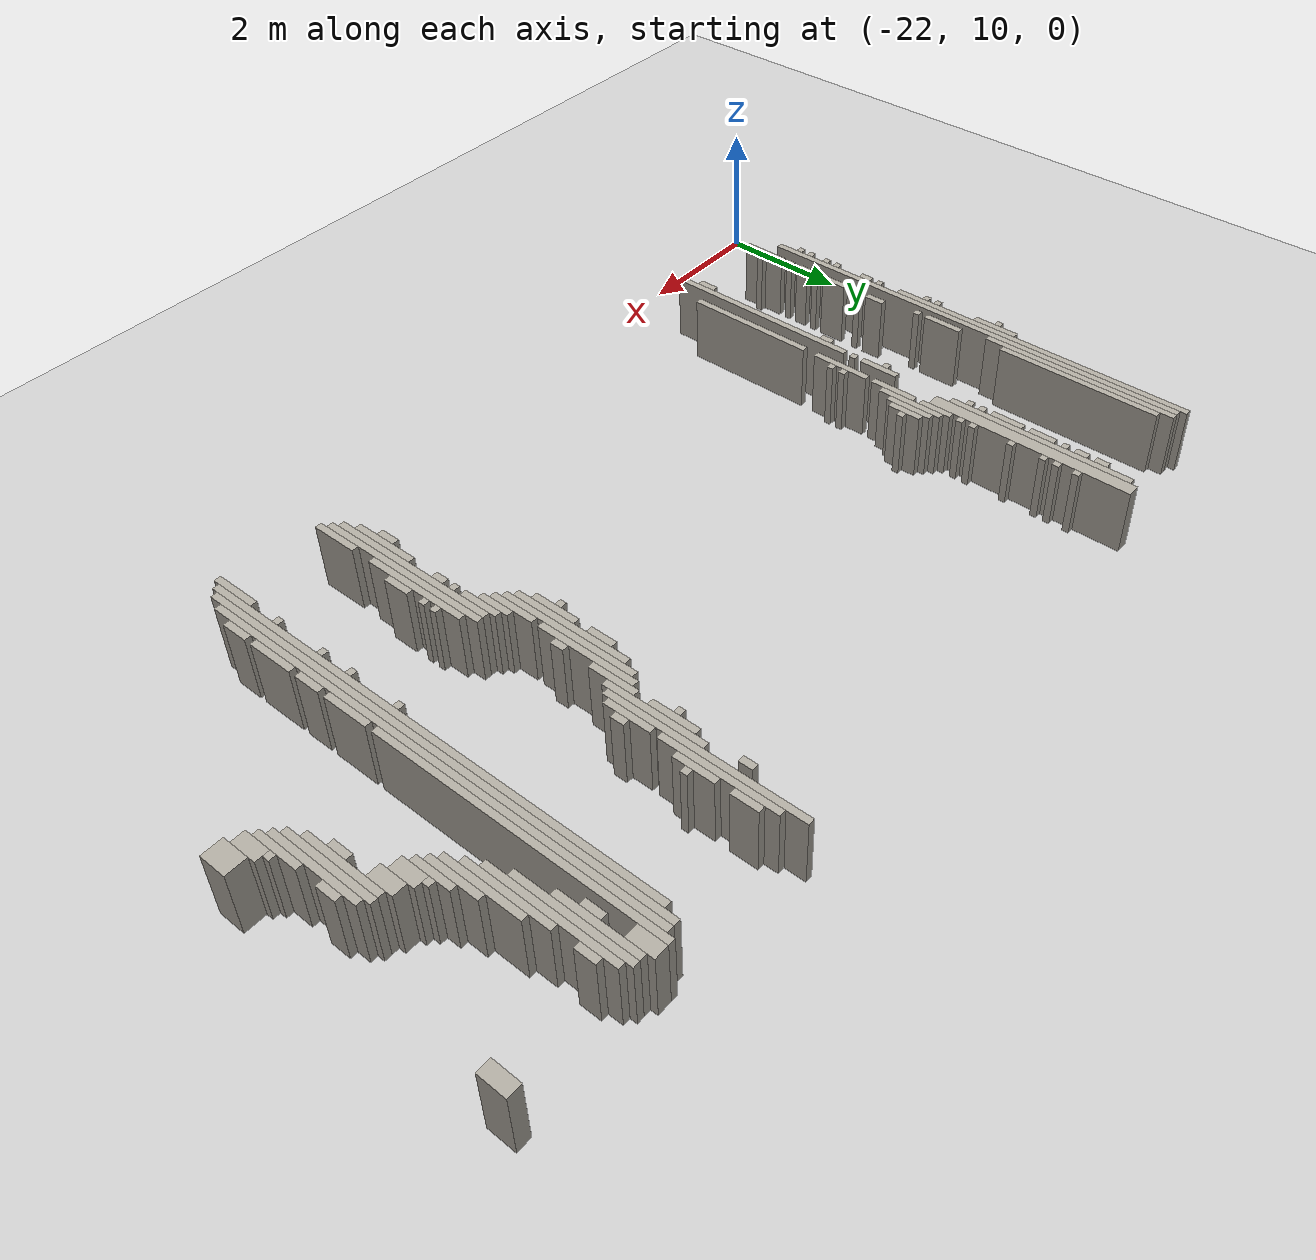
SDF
<sdf version="1.6">
 <world name="willow_office">
  <include><uri>model://sun</uri></include>
  <include><uri>model://ground_plane</uri></include>
  <model name="willow_office_walls">
   <static>true</static>
   <link name="w0810">
    <pose>-10.835 11.212 0.500 0 0 0</pose>
    <collision name="c"><geometry><box><size>0.100 0.700 1.000</size></box></geometry></collision>
    <visual name="v">
     <geometry><box><size>0.100 0.700 1.000</size></box></geometry>
     <material><ambient>0.68 0.66 0.62 1</ambient><diffuse>0.68 0.66 0.62 1</diffuse></material>
    </visual>
   </link>
   <link name="w0812">
    <pose>-19.435 12.512 0.500 0 0 0</pose>
    <collision name="c"><geometry><box><size>0.100 3.100 1.000</size></box></geometry></collision>
    <visual name="v">
     <geometry><box><size>0.100 3.100 1.000</size></box></geometry>
     <material><ambient>0.68 0.66 0.62 1</ambient><diffuse>0.68 0.66 0.62 1</diffuse></material>
    </visual>
   </link>
   <link name="w0815">
    <pose>-10.735 14.562 0.500 0 0 0</pose>
    <collision name="c"><geometry><box><size>0.100 7.200 1.000</size></box></geometry></collision>
    <visual name="v">
     <geometry><box><size>0.100 7.200 1.000</size></box></geometry>
     <material><ambient>0.68 0.66 0.62 1</ambient><diffuse>0.68 0.66 0.62 1</diffuse></material>
    </visual>
   </link>
   <link name="w0817">
    <pose>-12.235 11.412 0.500 0 0 0</pose>
    <collision name="c"><geometry><box><size>0.100 0.700 1.000</size></box></geometry></collision>
    <visual name="v">
     <geometry><box><size>0.100 0.700 1.000</size></box></geometry>
     <material><ambient>0.68 0.66 0.62 1</ambient><diffuse>0.68 0.66 0.62 1</diffuse></material>
    </visual>
   </link>
   <link name="w0818">
    <pose>-10.635 14.712 0.500 0 0 0</pose>
    <collision name="c"><geometry><box><size>0.100 7.300 1.000</size></box></geometry></collision>
    <visual name="v">
     <geometry><box><size>0.100 7.300 1.000</size></box></geometry>
     <material><ambient>0.68 0.66 0.62 1</ambient><diffuse>0.68 0.66 0.62 1</diffuse></material>
    </visual>
   </link>
   <link name="w0819">
    <pose>-20.835 11.512 0.500 0 0 0</pose>
    <collision name="c"><geometry><box><size>0.100 0.700 1.000</size></box></geometry></collision>
    <visual name="v">
     <geometry><box><size>0.100 0.700 1.000</size></box></geometry>
     <material><ambient>0.68 0.66 0.62 1</ambient><diffuse>0.68 0.66 0.62 1</diffuse></material>
    </visual>
   </link>
   <link name="w0820">
    <pose>-12.335 12.512 0.500 0 0 0</pose>
    <collision name="c"><geometry><box><size>0.100 2.700 1.000</size></box></geometry></collision>
    <visual name="v">
     <geometry><box><size>0.100 2.700 1.000</size></box></geometry>
     <material><ambient>0.68 0.66 0.62 1</ambient><diffuse>0.68 0.66 0.62 1</diffuse></material>
    </visual>
   </link>
   <link name="w0823">
    <pose>-19.535 11.412 0.500 0 0 0</pose>
    <collision name="c"><geometry><box><size>0.100 0.300 1.000</size></box></geometry></collision>
    <visual name="v">
     <geometry><box><size>0.100 0.300 1.000</size></box></geometry>
     <material><ambient>0.68 0.66 0.62 1</ambient><diffuse>0.68 0.66 0.62 1</diffuse></material>
    </visual>
   </link>
   <link name="w0824">
    <pose>-12.435 12.562 0.500 0 0 0</pose>
    <collision name="c"><geometry><box><size>0.100 2.600 1.000</size></box></geometry></collision>
    <visual name="v">
     <geometry><box><size>0.100 2.600 1.000</size></box></geometry>
     <material><ambient>0.68 0.66 0.62 1</ambient><diffuse>0.68 0.66 0.62 1</diffuse></material>
    </visual>
   </link>
   <link name="w0825">
    <pose>-10.535 14.812 0.500 0 0 0</pose>
    <collision name="c"><geometry><box><size>0.100 7.100 1.000</size></box></geometry></collision>
    <visual name="v">
     <geometry><box><size>0.100 7.100 1.000</size></box></geometry>
     <material><ambient>0.68 0.66 0.62 1</ambient><diffuse>0.68 0.66 0.62 1</diffuse></material>
    </visual>
   </link>
   <link name="w0828">
    <pose>-20.735 11.512 0.500 0 0 0</pose>
    <collision name="c"><geometry><box><size>0.100 0.100 1.000</size></box></geometry></collision>
    <visual name="v">
     <geometry><box><size>0.100 0.100 1.000</size></box></geometry>
     <material><ambient>0.68 0.66 0.62 1</ambient><diffuse>0.68 0.66 0.62 1</diffuse></material>
    </visual>
   </link>
   <link name="w0829">
    <pose>-12.535 11.962 0.500 0 0 0</pose>
    <collision name="c"><geometry><box><size>0.100 1.000 1.000</size></box></geometry></collision>
    <visual name="v">
     <geometry><box><size>0.100 1.000 1.000</size></box></geometry>
     <material><ambient>0.68 0.66 0.62 1</ambient><diffuse>0.68 0.66 0.62 1</diffuse></material>
    </visual>
   </link>
   <link name="w0831">
    <pose>-21.135 15.012 0.500 0 0 0</pose>
    <collision name="c"><geometry><box><size>0.100 6.900 1.000</size></box></geometry></collision>
    <visual name="v">
     <geometry><box><size>0.100 6.900 1.000</size></box></geometry>
     <material><ambient>0.68 0.66 0.62 1</ambient><diffuse>0.68 0.66 0.62 1</diffuse></material>
    </visual>
   </link>
   <link name="w0832">
    <pose>-19.135 12.562 0.500 0 0 0</pose>
    <collision name="c"><geometry><box><size>0.100 2.000 1.000</size></box></geometry></collision>
    <visual name="v">
     <geometry><box><size>0.100 2.000 1.000</size></box></geometry>
     <material><ambient>0.68 0.66 0.62 1</ambient><diffuse>0.68 0.66 0.62 1</diffuse></material>
    </visual>
   </link>
   <link name="w0833">
    <pose>-10.435 11.762 0.500 0 0 0</pose>
    <collision name="c"><geometry><box><size>0.100 0.400 1.000</size></box></geometry></collision>
    <visual name="v">
     <geometry><box><size>0.100 0.400 1.000</size></box></geometry>
     <material><ambient>0.68 0.66 0.62 1</ambient><diffuse>0.68 0.66 0.62 1</diffuse></material>
    </visual>
   </link>
   <link name="w0838">
    <pose>-12.635 11.912 0.500 0 0 0</pose>
    <collision name="c"><geometry><box><size>0.100 0.300 1.000</size></box></geometry></collision>
    <visual name="v">
     <geometry><box><size>0.100 0.300 1.000</size></box></geometry>
     <material><ambient>0.68 0.66 0.62 1</ambient><diffuse>0.68 0.66 0.62 1</diffuse></material>
    </visual>
   </link>
   <link name="w0839">
    <pose>-21.235 11.912 0.500 0 0 0</pose>
    <collision name="c"><geometry><box><size>0.100 0.100 1.000</size></box></geometry></collision>
    <visual name="v">
     <geometry><box><size>0.100 0.100 1.000</size></box></geometry>
     <material><ambient>0.68 0.66 0.62 1</ambient><diffuse>0.68 0.66 0.62 1</diffuse></material>
    </visual>
   </link>
   <link name="w0842">
    <pose>-20.835 12.012 0.500 0 0 0</pose>
    <collision name="c"><geometry><box><size>0.100 0.100 1.000</size></box></geometry></collision>
    <visual name="v">
     <geometry><box><size>0.100 0.100 1.000</size></box></geometry>
     <material><ambient>0.68 0.66 0.62 1</ambient><diffuse>0.68 0.66 0.62 1</diffuse></material>
    </visual>
   </link>
   <link name="w0843">
    <pose>-10.835 12.012 0.500 0 0 0</pose>
    <collision name="c"><geometry><box><size>0.100 0.100 1.000</size></box></geometry></collision>
    <visual name="v">
     <geometry><box><size>0.100 0.100 1.000</size></box></geometry>
     <material><ambient>0.68 0.66 0.62 1</ambient><diffuse>0.68 0.66 0.62 1</diffuse></material>
    </visual>
   </link>
   <link name="w0845">
    <pose>-21.235 12.112 0.500 0 0 0</pose>
    <collision name="c"><geometry><box><size>0.100 0.100 1.000</size></box></geometry></collision>
    <visual name="v">
     <geometry><box><size>0.100 0.100 1.000</size></box></geometry>
     <material><ambient>0.68 0.66 0.62 1</ambient><diffuse>0.68 0.66 0.62 1</diffuse></material>
    </visual>
   </link>
   <link name="w0846">
    <pose>-12.235 12.862 0.500 0 0 0</pose>
    <collision name="c"><geometry><box><size>0.100 1.600 1.000</size></box></geometry></collision>
    <visual name="v">
     <geometry><box><size>0.100 1.600 1.000</size></box></geometry>
     <material><ambient>0.68 0.66 0.62 1</ambient><diffuse>0.68 0.66 0.62 1</diffuse></material>
    </visual>
   </link>
   <link name="w0847">
    <pose>-10.435 12.412 0.500 0 0 0</pose>
    <collision name="c"><geometry><box><size>0.100 0.700 1.000</size></box></geometry></collision>
    <visual name="v">
     <geometry><box><size>0.100 0.700 1.000</size></box></geometry>
     <material><ambient>0.68 0.66 0.62 1</ambient><diffuse>0.68 0.66 0.62 1</diffuse></material>
    </visual>
   </link>
   <link name="w0849">
    <pose>-20.835 12.262 0.500 0 0 0</pose>
    <collision name="c"><geometry><box><size>0.100 0.200 1.000</size></box></geometry></collision>
    <visual name="v">
     <geometry><box><size>0.100 0.200 1.000</size></box></geometry>
     <material><ambient>0.68 0.66 0.62 1</ambient><diffuse>0.68 0.66 0.62 1</diffuse></material>
    </visual>
   </link>
   <link name="w0851">
    <pose>-21.235 12.412 0.500 0 0 0</pose>
    <collision name="c"><geometry><box><size>0.100 0.100 1.000</size></box></geometry></collision>
    <visual name="v">
     <geometry><box><size>0.100 0.100 1.000</size></box></geometry>
     <material><ambient>0.68 0.66 0.62 1</ambient><diffuse>0.68 0.66 0.62 1</diffuse></material>
    </visual>
   </link>
   <link name="w0853">
    <pose>-20.835 12.512 0.500 0 0 0</pose>
    <collision name="c"><geometry><box><size>0.100 0.100 1.000</size></box></geometry></collision>
    <visual name="v">
     <geometry><box><size>0.100 0.100 1.000</size></box></geometry>
     <material><ambient>0.68 0.66 0.62 1</ambient><diffuse>0.68 0.66 0.62 1</diffuse></material>
    </visual>
   </link>
   <link name="w0854">
    <pose>-12.135 12.662 0.500 0 0 0</pose>
    <collision name="c"><geometry><box><size>0.100 0.400 1.000</size></box></geometry></collision>
    <visual name="v">
     <geometry><box><size>0.100 0.400 1.000</size></box></geometry>
     <material><ambient>0.68 0.66 0.62 1</ambient><diffuse>0.68 0.66 0.62 1</diffuse></material>
    </visual>
   </link>
   <link name="w0855">
    <pose>-21.235 12.612 0.500 0 0 0</pose>
    <collision name="c"><geometry><box><size>0.100 0.100 1.000</size></box></geometry></collision>
    <visual name="v">
     <geometry><box><size>0.100 0.100 1.000</size></box></geometry>
     <material><ambient>0.68 0.66 0.62 1</ambient><diffuse>0.68 0.66 0.62 1</diffuse></material>
    </visual>
   </link>
   <link name="w0857">
    <pose>-20.835 12.862 0.500 0 0 0</pose>
    <collision name="c"><geometry><box><size>0.100 0.400 1.000</size></box></geometry></collision>
    <visual name="v">
     <geometry><box><size>0.100 0.400 1.000</size></box></geometry>
     <material><ambient>0.68 0.66 0.62 1</ambient><diffuse>0.68 0.66 0.62 1</diffuse></material>
    </visual>
   </link>
   <link name="w0858">
    <pose>-10.835 12.812 0.500 0 0 0</pose>
    <collision name="c"><geometry><box><size>0.100 0.100 1.000</size></box></geometry></collision>
    <visual name="v">
     <geometry><box><size>0.100 0.100 1.000</size></box></geometry>
     <material><ambient>0.68 0.66 0.62 1</ambient><diffuse>0.68 0.66 0.62 1</diffuse></material>
    </visual>
   </link>
   <link name="w0859">
    <pose>-12.535 12.962 0.500 0 0 0</pose>
    <collision name="c"><geometry><box><size>0.100 0.200 1.000</size></box></geometry></collision>
    <visual name="v">
     <geometry><box><size>0.100 0.200 1.000</size></box></geometry>
     <material><ambient>0.68 0.66 0.62 1</ambient><diffuse>0.68 0.66 0.62 1</diffuse></material>
    </visual>
   </link>
   <link name="w0860">
    <pose>-10.435 13.062 0.500 0 0 0</pose>
    <collision name="c"><geometry><box><size>0.100 0.400 1.000</size></box></geometry></collision>
    <visual name="v">
     <geometry><box><size>0.100 0.400 1.000</size></box></geometry>
     <material><ambient>0.68 0.66 0.62 1</ambient><diffuse>0.68 0.66 0.62 1</diffuse></material>
    </visual>
   </link>
   <link name="w0862">
    <pose>-21.235 13.162 0.500 0 0 0</pose>
    <collision name="c"><geometry><box><size>0.100 0.200 1.000</size></box></geometry></collision>
    <visual name="v">
     <geometry><box><size>0.100 0.200 1.000</size></box></geometry>
     <material><ambient>0.68 0.66 0.62 1</ambient><diffuse>0.68 0.66 0.62 1</diffuse></material>
    </visual>
   </link>
   <link name="w0863">
    <pose>-12.135 13.112 0.500 0 0 0</pose>
    <collision name="c"><geometry><box><size>0.100 0.100 1.000</size></box></geometry></collision>
    <visual name="v">
     <geometry><box><size>0.100 0.100 1.000</size></box></geometry>
     <material><ambient>0.68 0.66 0.62 1</ambient><diffuse>0.68 0.66 0.62 1</diffuse></material>
    </visual>
   </link>
   <link name="w0864">
    <pose>-12.535 13.212 0.500 0 0 0</pose>
    <collision name="c"><geometry><box><size>0.100 0.100 1.000</size></box></geometry></collision>
    <visual name="v">
     <geometry><box><size>0.100 0.100 1.000</size></box></geometry>
     <material><ambient>0.68 0.66 0.62 1</ambient><diffuse>0.68 0.66 0.62 1</diffuse></material>
    </visual>
   </link>
   <link name="w0866">
    <pose>-20.835 13.312 0.500 0 0 0</pose>
    <collision name="c"><geometry><box><size>0.100 0.100 1.000</size></box></geometry></collision>
    <visual name="v">
     <geometry><box><size>0.100 0.100 1.000</size></box></geometry>
     <material><ambient>0.68 0.66 0.62 1</ambient><diffuse>0.68 0.66 0.62 1</diffuse></material>
    </visual>
   </link>
   <link name="w0867">
    <pose>-12.135 13.312 0.500 0 0 0</pose>
    <collision name="c"><geometry><box><size>0.100 0.100 1.000</size></box></geometry></collision>
    <visual name="v">
     <geometry><box><size>0.100 0.100 1.000</size></box></geometry>
     <material><ambient>0.68 0.66 0.62 1</ambient><diffuse>0.68 0.66 0.62 1</diffuse></material>
    </visual>
   </link>
   <link name="w0868">
    <pose>-10.835 13.312 0.500 0 0 0</pose>
    <collision name="c"><geometry><box><size>0.100 0.100 1.000</size></box></geometry></collision>
    <visual name="v">
     <geometry><box><size>0.100 0.100 1.000</size></box></geometry>
     <material><ambient>0.68 0.66 0.62 1</ambient><diffuse>0.68 0.66 0.62 1</diffuse></material>
    </visual>
   </link>
   <link name="w0870">
    <pose>-21.235 13.412 0.500 0 0 0</pose>
    <collision name="c"><geometry><box><size>0.100 0.100 1.000</size></box></geometry></collision>
    <visual name="v">
     <geometry><box><size>0.100 0.100 1.000</size></box></geometry>
     <material><ambient>0.68 0.66 0.62 1</ambient><diffuse>0.68 0.66 0.62 1</diffuse></material>
    </visual>
   </link>
   <link name="w0871">
    <pose>-12.535 13.662 0.500 0 0 0</pose>
    <collision name="c"><geometry><box><size>0.100 0.600 1.000</size></box></geometry></collision>
    <visual name="v">
     <geometry><box><size>0.100 0.600 1.000</size></box></geometry>
     <material><ambient>0.68 0.66 0.62 1</ambient><diffuse>0.68 0.66 0.62 1</diffuse></material>
    </visual>
   </link>
   <link name="w0872">
    <pose>-10.435 13.712 0.500 0 0 0</pose>
    <collision name="c"><geometry><box><size>0.100 0.700 1.000</size></box></geometry></collision>
    <visual name="v">
     <geometry><box><size>0.100 0.700 1.000</size></box></geometry>
     <material><ambient>0.68 0.66 0.62 1</ambient><diffuse>0.68 0.66 0.62 1</diffuse></material>
    </visual>
   </link>
   <link name="w0873">
    <pose>-20.835 13.612 0.500 0 0 0</pose>
    <collision name="c"><geometry><box><size>0.100 0.300 1.000</size></box></geometry></collision>
    <visual name="v">
     <geometry><box><size>0.100 0.300 1.000</size></box></geometry>
     <material><ambient>0.68 0.66 0.62 1</ambient><diffuse>0.68 0.66 0.62 1</diffuse></material>
    </visual>
   </link>
   <link name="w0875">
    <pose>-19.535 13.662 0.500 0 0 0</pose>
    <collision name="c"><geometry><box><size>0.100 0.200 1.000</size></box></geometry></collision>
    <visual name="v">
     <geometry><box><size>0.100 0.200 1.000</size></box></geometry>
     <material><ambient>0.68 0.66 0.62 1</ambient><diffuse>0.68 0.66 0.62 1</diffuse></material>
    </visual>
   </link>
   <link name="w0876">
    <pose>-12.635 13.812 0.500 0 0 0</pose>
    <collision name="c"><geometry><box><size>0.100 0.500 1.000</size></box></geometry></collision>
    <visual name="v">
     <geometry><box><size>0.100 0.500 1.000</size></box></geometry>
     <material><ambient>0.68 0.66 0.62 1</ambient><diffuse>0.68 0.66 0.62 1</diffuse></material>
    </visual>
   </link>
   <link name="w0877">
    <pose>-12.735 14.012 0.500 0 0 0</pose>
    <collision name="c"><geometry><box><size>0.100 0.700 1.000</size></box></geometry></collision>
    <visual name="v">
     <geometry><box><size>0.100 0.700 1.000</size></box></geometry>
     <material><ambient>0.68 0.66 0.62 1</ambient><diffuse>0.68 0.66 0.62 1</diffuse></material>
    </visual>
   </link>
   <link name="w0879">
    <pose>-21.235 16.162 0.500 0 0 0</pose>
    <collision name="c"><geometry><box><size>0.100 4.800 1.000</size></box></geometry></collision>
    <visual name="v">
     <geometry><box><size>0.100 4.800 1.000</size></box></geometry>
     <material><ambient>0.68 0.66 0.62 1</ambient><diffuse>0.68 0.66 0.62 1</diffuse></material>
    </visual>
   </link>
   <link name="w0880">
    <pose>-19.135 14.212 0.500 0 0 0</pose>
    <collision name="c"><geometry><box><size>0.100 0.900 1.000</size></box></geometry></collision>
    <visual name="v">
     <geometry><box><size>0.100 0.900 1.000</size></box></geometry>
     <material><ambient>0.68 0.66 0.62 1</ambient><diffuse>0.68 0.66 0.62 1</diffuse></material>
    </visual>
   </link>
   <link name="w0881">
    <pose>-12.835 14.812 0.500 0 0 0</pose>
    <collision name="c"><geometry><box><size>0.100 2.100 1.000</size></box></geometry></collision>
    <visual name="v">
     <geometry><box><size>0.100 2.100 1.000</size></box></geometry>
     <material><ambient>0.68 0.66 0.62 1</ambient><diffuse>0.68 0.66 0.62 1</diffuse></material>
    </visual>
   </link>
   <link name="w0882">
    <pose>-12.935 14.762 0.500 0 0 0</pose>
    <collision name="c"><geometry><box><size>0.100 1.800 1.000</size></box></geometry></collision>
    <visual name="v">
     <geometry><box><size>0.100 1.800 1.000</size></box></geometry>
     <material><ambient>0.68 0.66 0.62 1</ambient><diffuse>0.68 0.66 0.62 1</diffuse></material>
    </visual>
   </link>
   <link name="w0885">
    <pose>-19.035 14.112 0.500 0 0 0</pose>
    <collision name="c"><geometry><box><size>0.100 0.100 1.000</size></box></geometry></collision>
    <visual name="v">
     <geometry><box><size>0.100 0.100 1.000</size></box></geometry>
     <material><ambient>0.68 0.66 0.62 1</ambient><diffuse>0.68 0.66 0.62 1</diffuse></material>
    </visual>
   </link>
   <link name="w0886">
    <pose>-13.035 14.412 0.500 0 0 0</pose>
    <collision name="c"><geometry><box><size>0.100 0.700 1.000</size></box></geometry></collision>
    <visual name="v">
     <geometry><box><size>0.100 0.700 1.000</size></box></geometry>
     <material><ambient>0.68 0.66 0.62 1</ambient><diffuse>0.68 0.66 0.62 1</diffuse></material>
    </visual>
   </link>
   <link name="w0887">
    <pose>-10.835 14.112 0.500 0 0 0</pose>
    <collision name="c"><geometry><box><size>0.100 0.100 1.000</size></box></geometry></collision>
    <visual name="v">
     <geometry><box><size>0.100 0.100 1.000</size></box></geometry>
     <material><ambient>0.68 0.66 0.62 1</ambient><diffuse>0.68 0.66 0.62 1</diffuse></material>
    </visual>
   </link>
   <link name="w0888">
    <pose>-8.335 14.262 0.500 0 0 0</pose>
    <collision name="c"><geometry><box><size>0.300 0.400 1.000</size></box></geometry></collision>
    <visual name="v">
     <geometry><box><size>0.300 0.400 1.000</size></box></geometry>
     <material><ambient>0.68 0.66 0.62 1</ambient><diffuse>0.68 0.66 0.62 1</diffuse></material>
    </visual>
   </link>
   <link name="w0891">
    <pose>-21.335 14.212 0.500 0 0 0</pose>
    <collision name="c"><geometry><box><size>0.100 0.100 1.000</size></box></geometry></collision>
    <visual name="v">
     <geometry><box><size>0.100 0.100 1.000</size></box></geometry>
     <material><ambient>0.68 0.66 0.62 1</ambient><diffuse>0.68 0.66 0.62 1</diffuse></material>
    </visual>
   </link>
   <link name="w0892">
    <pose>-19.435 14.212 0.500 0 0 0</pose>
    <collision name="c"><geometry><box><size>0.100 0.100 1.000</size></box></geometry></collision>
    <visual name="v">
     <geometry><box><size>0.100 0.100 1.000</size></box></geometry>
     <material><ambient>0.68 0.66 0.62 1</ambient><diffuse>0.68 0.66 0.62 1</diffuse></material>
    </visual>
   </link>
   <link name="w0893">
    <pose>-10.435 16.312 0.500 0 0 0</pose>
    <collision name="c"><geometry><box><size>0.100 4.300 1.000</size></box></geometry></collision>
    <visual name="v">
     <geometry><box><size>0.100 4.300 1.000</size></box></geometry>
     <material><ambient>0.68 0.66 0.62 1</ambient><diffuse>0.68 0.66 0.62 1</diffuse></material>
    </visual>
   </link>
   <link name="w0894">
    <pose>-8.585 14.362 0.500 0 0 0</pose>
    <collision name="c"><geometry><box><size>0.200 0.400 1.000</size></box></geometry></collision>
    <visual name="v">
     <geometry><box><size>0.200 0.400 1.000</size></box></geometry>
     <material><ambient>0.68 0.66 0.62 1</ambient><diffuse>0.68 0.66 0.62 1</diffuse></material>
    </visual>
   </link>
   <link name="w0899">
    <pose>-20.935 14.312 0.500 0 0 0</pose>
    <collision name="c"><geometry><box><size>0.100 0.100 1.000</size></box></geometry></collision>
    <visual name="v">
     <geometry><box><size>0.100 0.100 1.000</size></box></geometry>
     <material><ambient>0.68 0.66 0.62 1</ambient><diffuse>0.68 0.66 0.62 1</diffuse></material>
    </visual>
   </link>
   <link name="w0900">
    <pose>-19.035 14.312 0.500 0 0 0</pose>
    <collision name="c"><geometry><box><size>0.100 0.100 1.000</size></box></geometry></collision>
    <visual name="v">
     <geometry><box><size>0.100 0.100 1.000</size></box></geometry>
     <material><ambient>0.68 0.66 0.62 1</ambient><diffuse>0.68 0.66 0.62 1</diffuse></material>
    </visual>
   </link>
   <link name="w0901">
    <pose>-8.735 14.612 0.500 0 0 0</pose>
    <collision name="c"><geometry><box><size>0.100 0.700 1.000</size></box></geometry></collision>
    <visual name="v">
     <geometry><box><size>0.100 0.700 1.000</size></box></geometry>
     <material><ambient>0.68 0.66 0.62 1</ambient><diffuse>0.68 0.66 0.62 1</diffuse></material>
    </visual>
   </link>
   <link name="w0905">
    <pose>-21.335 14.412 0.500 0 0 0</pose>
    <collision name="c"><geometry><box><size>0.100 0.100 1.000</size></box></geometry></collision>
    <visual name="v">
     <geometry><box><size>0.100 0.100 1.000</size></box></geometry>
     <material><ambient>0.68 0.66 0.62 1</ambient><diffuse>0.68 0.66 0.62 1</diffuse></material>
    </visual>
   </link>
   <link name="w0906">
    <pose>-19.435 14.662 0.500 0 0 0</pose>
    <collision name="c"><geometry><box><size>0.100 0.600 1.000</size></box></geometry></collision>
    <visual name="v">
     <geometry><box><size>0.100 0.600 1.000</size></box></geometry>
     <material><ambient>0.68 0.66 0.62 1</ambient><diffuse>0.68 0.66 0.62 1</diffuse></material>
    </visual>
   </link>
   <link name="w0907">
    <pose>-13.135 14.412 0.500 0 0 0</pose>
    <collision name="c"><geometry><box><size>0.100 0.100 1.000</size></box></geometry></collision>
    <visual name="v">
     <geometry><box><size>0.100 0.100 1.000</size></box></geometry>
     <material><ambient>0.68 0.66 0.62 1</ambient><diffuse>0.68 0.66 0.62 1</diffuse></material>
    </visual>
   </link>
   <link name="w0908">
    <pose>-8.835 15.062 0.500 0 0 0</pose>
    <collision name="c"><geometry><box><size>0.100 1.400 1.000</size></box></geometry></collision>
    <visual name="v">
     <geometry><box><size>0.100 1.400 1.000</size></box></geometry>
     <material><ambient>0.68 0.66 0.62 1</ambient><diffuse>0.68 0.66 0.62 1</diffuse></material>
    </visual>
   </link>
   <link name="w0911">
    <pose>-20.935 14.762 0.500 0 0 0</pose>
    <collision name="c"><geometry><box><size>0.100 0.600 1.000</size></box></geometry></collision>
    <visual name="v">
     <geometry><box><size>0.100 0.600 1.000</size></box></geometry>
     <material><ambient>0.68 0.66 0.62 1</ambient><diffuse>0.68 0.66 0.62 1</diffuse></material>
    </visual>
   </link>
   <link name="w0912">
    <pose>-12.735 15.212 0.500 0 0 0</pose>
    <collision name="c"><geometry><box><size>0.100 1.500 1.000</size></box></geometry></collision>
    <visual name="v">
     <geometry><box><size>0.100 1.500 1.000</size></box></geometry>
     <material><ambient>0.68 0.66 0.62 1</ambient><diffuse>0.68 0.66 0.62 1</diffuse></material>
    </visual>
   </link>
   <link name="w0913">
    <pose>-8.935 15.162 0.500 0 0 0</pose>
    <collision name="c"><geometry><box><size>0.100 1.400 1.000</size></box></geometry></collision>
    <visual name="v">
     <geometry><box><size>0.100 1.400 1.000</size></box></geometry>
     <material><ambient>0.68 0.66 0.62 1</ambient><diffuse>0.68 0.66 0.62 1</diffuse></material>
    </visual>
   </link>
   <link name="w0918">
    <pose>-8.635 14.612 0.500 0 0 0</pose>
    <collision name="c"><geometry><box><size>0.100 0.100 1.000</size></box></geometry></collision>
    <visual name="v">
     <geometry><box><size>0.100 0.100 1.000</size></box></geometry>
     <material><ambient>0.68 0.66 0.62 1</ambient><diffuse>0.68 0.66 0.62 1</diffuse></material>
    </visual>
   </link>
   <link name="w0921">
    <pose>-19.535 14.712 0.500 0 0 0</pose>
    <collision name="c"><geometry><box><size>0.100 0.100 1.000</size></box></geometry></collision>
    <visual name="v">
     <geometry><box><size>0.100 0.100 1.000</size></box></geometry>
     <material><ambient>0.68 0.66 0.62 1</ambient><diffuse>0.68 0.66 0.62 1</diffuse></material>
    </visual>
   </link>
   <link name="w0922">
    <pose>-9.035 15.262 0.500 0 0 0</pose>
    <collision name="c"><geometry><box><size>0.100 1.200 1.000</size></box></geometry></collision>
    <visual name="v">
     <geometry><box><size>0.100 1.200 1.000</size></box></geometry>
     <material><ambient>0.68 0.66 0.62 1</ambient><diffuse>0.68 0.66 0.62 1</diffuse></material>
    </visual>
   </link>
   <link name="w0926">
    <pose>-19.135 15.112 0.500 0 0 0</pose>
    <collision name="c"><geometry><box><size>0.100 0.700 1.000</size></box></geometry></collision>
    <visual name="v">
     <geometry><box><size>0.100 0.700 1.000</size></box></geometry>
     <material><ambient>0.68 0.66 0.62 1</ambient><diffuse>0.68 0.66 0.62 1</diffuse></material>
    </visual>
   </link>
   <link name="w0927">
    <pose>-12.635 14.862 0.500 0 0 0</pose>
    <collision name="c"><geometry><box><size>0.100 0.200 1.000</size></box></geometry></collision>
    <visual name="v">
     <geometry><box><size>0.100 0.200 1.000</size></box></geometry>
     <material><ambient>0.68 0.66 0.62 1</ambient><diffuse>0.68 0.66 0.62 1</diffuse></material>
    </visual>
   </link>
   <link name="w0933">
    <pose>-19.035 15.462 0.500 0 0 0</pose>
    <collision name="c"><geometry><box><size>0.100 1.000 1.000</size></box></geometry></collision>
    <visual name="v">
     <geometry><box><size>0.100 1.000 1.000</size></box></geometry>
     <material><ambient>0.68 0.66 0.62 1</ambient><diffuse>0.68 0.66 0.62 1</diffuse></material>
    </visual>
   </link>
   <link name="w0934">
    <pose>-13.035 15.162 0.500 0 0 0</pose>
    <collision name="c"><geometry><box><size>0.100 0.400 1.000</size></box></geometry></collision>
    <visual name="v">
     <geometry><box><size>0.100 0.400 1.000</size></box></geometry>
     <material><ambient>0.68 0.66 0.62 1</ambient><diffuse>0.68 0.66 0.62 1</diffuse></material>
    </visual>
   </link>
   <link name="w0935">
    <pose>-9.135 15.112 0.500 0 0 0</pose>
    <collision name="c"><geometry><box><size>0.100 0.300 1.000</size></box></geometry></collision>
    <visual name="v">
     <geometry><box><size>0.100 0.300 1.000</size></box></geometry>
     <material><ambient>0.68 0.66 0.62 1</ambient><diffuse>0.68 0.66 0.62 1</diffuse></material>
    </visual>
   </link>
   <link name="w0938">
    <pose>-21.335 15.412 0.500 0 0 0</pose>
    <collision name="c"><geometry><box><size>0.100 0.700 1.000</size></box></geometry></collision>
    <visual name="v">
     <geometry><box><size>0.100 0.700 1.000</size></box></geometry>
     <material><ambient>0.68 0.66 0.62 1</ambient><diffuse>0.68 0.66 0.62 1</diffuse></material>
    </visual>
   </link>
   <link name="w0940">
    <pose>-18.935 15.512 0.500 0 0 0</pose>
    <collision name="c"><geometry><box><size>0.100 0.700 1.000</size></box></geometry></collision>
    <visual name="v">
     <geometry><box><size>0.100 0.700 1.000</size></box></geometry>
     <material><ambient>0.68 0.66 0.62 1</ambient><diffuse>0.68 0.66 0.62 1</diffuse></material>
    </visual>
   </link>
   <link name="w0943">
    <pose>-18.835 15.512 0.500 0 0 0</pose>
    <collision name="c"><geometry><box><size>0.100 0.500 1.000</size></box></geometry></collision>
    <visual name="v">
     <geometry><box><size>0.100 0.500 1.000</size></box></geometry>
     <material><ambient>0.68 0.66 0.62 1</ambient><diffuse>0.68 0.66 0.62 1</diffuse></material>
    </visual>
   </link>
   <link name="w0944">
    <pose>-8.735 15.412 0.500 0 0 0</pose>
    <collision name="c"><geometry><box><size>0.100 0.300 1.000</size></box></geometry></collision>
    <visual name="v">
     <geometry><box><size>0.100 0.300 1.000</size></box></geometry>
     <material><ambient>0.68 0.66 0.62 1</ambient><diffuse>0.68 0.66 0.62 1</diffuse></material>
    </visual>
   </link>
   <link name="w0945">
    <pose>-21.435 15.412 0.500 0 0 0</pose>
    <collision name="c"><geometry><box><size>0.100 0.100 1.000</size></box></geometry></collision>
    <visual name="v">
     <geometry><box><size>0.100 0.100 1.000</size></box></geometry>
     <material><ambient>0.68 0.66 0.62 1</ambient><diffuse>0.68 0.66 0.62 1</diffuse></material>
    </visual>
   </link>
   <link name="w0946">
    <pose>-12.635 15.712 0.500 0 0 0</pose>
    <collision name="c"><geometry><box><size>0.100 0.700 1.000</size></box></geometry></collision>
    <visual name="v">
     <geometry><box><size>0.100 0.700 1.000</size></box></geometry>
     <material><ambient>0.68 0.66 0.62 1</ambient><diffuse>0.68 0.66 0.62 1</diffuse></material>
    </visual>
   </link>
   <link name="w0948">
    <pose>-21.035 16.962 0.500 0 0 0</pose>
    <collision name="c"><geometry><box><size>0.100 3.000 1.000</size></box></geometry></collision>
    <visual name="v">
     <geometry><box><size>0.100 3.000 1.000</size></box></geometry>
     <material><ambient>0.68 0.66 0.62 1</ambient><diffuse>0.68 0.66 0.62 1</diffuse></material>
    </visual>
   </link>
   <link name="w0949">
    <pose>-18.735 15.512 0.500 0 0 0</pose>
    <collision name="c"><geometry><box><size>0.100 0.100 1.000</size></box></geometry></collision>
    <visual name="v">
     <geometry><box><size>0.100 0.100 1.000</size></box></geometry>
     <material><ambient>0.68 0.66 0.62 1</ambient><diffuse>0.68 0.66 0.62 1</diffuse></material>
    </visual>
   </link>
   <link name="w0952">
    <pose>-19.135 15.812 0.500 0 0 0</pose>
    <collision name="c"><geometry><box><size>0.100 0.500 1.000</size></box></geometry></collision>
    <visual name="v">
     <geometry><box><size>0.100 0.500 1.000</size></box></geometry>
     <material><ambient>0.68 0.66 0.62 1</ambient><diffuse>0.68 0.66 0.62 1</diffuse></material>
    </visual>
   </link>
   <link name="w0953">
    <pose>-9.185 15.762 0.500 0 0 0</pose>
    <collision name="c"><geometry><box><size>0.200 0.400 1.000</size></box></geometry></collision>
    <visual name="v">
     <geometry><box><size>0.200 0.400 1.000</size></box></geometry>
     <material><ambient>0.68 0.66 0.62 1</ambient><diffuse>0.68 0.66 0.62 1</diffuse></material>
    </visual>
   </link>
   <link name="w0955">
    <pose>-19.285 17.212 0.500 0 0 0</pose>
    <collision name="c"><geometry><box><size>0.200 3.100 1.000</size></box></geometry></collision>
    <visual name="v">
     <geometry><box><size>0.200 3.100 1.000</size></box></geometry>
     <material><ambient>0.68 0.66 0.62 1</ambient><diffuse>0.68 0.66 0.62 1</diffuse></material>
    </visual>
   </link>
   <link name="w0956">
    <pose>-12.535 16.412 0.500 0 0 0</pose>
    <collision name="c"><geometry><box><size>0.100 1.500 1.000</size></box></geometry></collision>
    <visual name="v">
     <geometry><box><size>0.100 1.500 1.000</size></box></geometry>
     <material><ambient>0.68 0.66 0.62 1</ambient><diffuse>0.68 0.66 0.62 1</diffuse></material>
    </visual>
   </link>
   <link name="w0957">
    <pose>-9.385 15.862 0.500 0 0 0</pose>
    <collision name="c"><geometry><box><size>0.200 0.400 1.000</size></box></geometry></collision>
    <visual name="v">
     <geometry><box><size>0.200 0.400 1.000</size></box></geometry>
     <material><ambient>0.68 0.66 0.62 1</ambient><diffuse>0.68 0.66 0.62 1</diffuse></material>
    </visual>
   </link>
   <link name="w0959">
    <pose>-20.935 17.012 0.500 0 0 0</pose>
    <collision name="c"><geometry><box><size>0.100 2.500 1.000</size></box></geometry></collision>
    <visual name="v">
     <geometry><box><size>0.100 2.500 1.000</size></box></geometry>
     <material><ambient>0.68 0.66 0.62 1</ambient><diffuse>0.68 0.66 0.62 1</diffuse></material>
    </visual>
   </link>
   <link name="w0960">
    <pose>-12.435 17.212 0.500 0 0 0</pose>
    <collision name="c"><geometry><box><size>0.100 2.900 1.000</size></box></geometry></collision>
    <visual name="v">
     <geometry><box><size>0.100 2.900 1.000</size></box></geometry>
     <material><ambient>0.68 0.66 0.62 1</ambient><diffuse>0.68 0.66 0.62 1</diffuse></material>
    </visual>
   </link>
   <link name="w0961">
    <pose>-9.535 16.062 0.500 0 0 0</pose>
    <collision name="c"><geometry><box><size>0.100 0.600 1.000</size></box></geometry></collision>
    <visual name="v">
     <geometry><box><size>0.100 0.600 1.000</size></box></geometry>
     <material><ambient>0.68 0.66 0.62 1</ambient><diffuse>0.68 0.66 0.62 1</diffuse></material>
    </visual>
   </link>
   <link name="w0963">
    <pose>-19.435 17.262 0.500 0 0 0</pose>
    <collision name="c"><geometry><box><size>0.100 2.800 1.000</size></box></geometry></collision>
    <visual name="v">
     <geometry><box><size>0.100 2.800 1.000</size></box></geometry>
     <material><ambient>0.68 0.66 0.62 1</ambient><diffuse>0.68 0.66 0.62 1</diffuse></material>
    </visual>
   </link>
   <link name="w0964">
    <pose>-12.335 16.212 0.500 0 0 0</pose>
    <collision name="c"><geometry><box><size>0.100 0.700 1.000</size></box></geometry></collision>
    <visual name="v">
     <geometry><box><size>0.100 0.700 1.000</size></box></geometry>
     <material><ambient>0.68 0.66 0.62 1</ambient><diffuse>0.68 0.66 0.62 1</diffuse></material>
    </visual>
   </link>
   <link name="w0965">
    <pose>-9.635 16.262 0.500 0 0 0</pose>
    <collision name="c"><geometry><box><size>0.100 0.800 1.000</size></box></geometry></collision>
    <visual name="v">
     <geometry><box><size>0.100 0.800 1.000</size></box></geometry>
     <material><ambient>0.68 0.66 0.62 1</ambient><diffuse>0.68 0.66 0.62 1</diffuse></material>
    </visual>
   </link>
   <link name="w0968">
    <pose>-9.735 16.562 0.500 0 0 0</pose>
    <collision name="c"><geometry><box><size>0.100 1.200 1.000</size></box></geometry></collision>
    <visual name="v">
     <geometry><box><size>0.100 1.200 1.000</size></box></geometry>
     <material><ambient>0.68 0.66 0.62 1</ambient><diffuse>0.68 0.66 0.62 1</diffuse></material>
    </visual>
   </link>
   <link name="w0970">
    <pose>-19.535 16.112 0.500 0 0 0</pose>
    <collision name="c"><geometry><box><size>0.100 0.100 1.000</size></box></geometry></collision>
    <visual name="v">
     <geometry><box><size>0.100 0.100 1.000</size></box></geometry>
     <material><ambient>0.68 0.66 0.62 1</ambient><diffuse>0.68 0.66 0.62 1</diffuse></material>
    </visual>
   </link>
   <link name="w0971">
    <pose>-12.235 16.162 0.500 0 0 0</pose>
    <collision name="c"><geometry><box><size>0.100 0.200 1.000</size></box></geometry></collision>
    <visual name="v">
     <geometry><box><size>0.100 0.200 1.000</size></box></geometry>
     <material><ambient>0.68 0.66 0.62 1</ambient><diffuse>0.68 0.66 0.62 1</diffuse></material>
    </visual>
   </link>
   <link name="w0972">
    <pose>-9.435 16.112 0.500 0 0 0</pose>
    <collision name="c"><geometry><box><size>0.100 0.100 1.000</size></box></geometry></collision>
    <visual name="v">
     <geometry><box><size>0.100 0.100 1.000</size></box></geometry>
     <material><ambient>0.68 0.66 0.62 1</ambient><diffuse>0.68 0.66 0.62 1</diffuse></material>
    </visual>
   </link>
   <link name="w0975">
    <pose>-19.135 16.212 0.500 0 0 0</pose>
    <collision name="c"><geometry><box><size>0.100 0.100 1.000</size></box></geometry></collision>
    <visual name="v">
     <geometry><box><size>0.100 0.100 1.000</size></box></geometry>
     <material><ambient>0.68 0.66 0.62 1</ambient><diffuse>0.68 0.66 0.62 1</diffuse></material>
    </visual>
   </link>
   <link name="w0976">
    <pose>-9.835 16.812 0.500 0 0 0</pose>
    <collision name="c"><geometry><box><size>0.100 1.300 1.000</size></box></geometry></collision>
    <visual name="v">
     <geometry><box><size>0.100 1.300 1.000</size></box></geometry>
     <material><ambient>0.68 0.66 0.62 1</ambient><diffuse>0.68 0.66 0.62 1</diffuse></material>
    </visual>
   </link>
   <link name="w0981">
    <pose>-19.535 16.312 0.500 0 0 0</pose>
    <collision name="c"><geometry><box><size>0.100 0.100 1.000</size></box></geometry></collision>
    <visual name="v">
     <geometry><box><size>0.100 0.100 1.000</size></box></geometry>
     <material><ambient>0.68 0.66 0.62 1</ambient><diffuse>0.68 0.66 0.62 1</diffuse></material>
    </visual>
   </link>
   <link name="w0982">
    <pose>-12.635 16.612 0.500 0 0 0</pose>
    <collision name="c"><geometry><box><size>0.100 0.700 1.000</size></box></geometry></collision>
    <visual name="v">
     <geometry><box><size>0.100 0.700 1.000</size></box></geometry>
     <material><ambient>0.68 0.66 0.62 1</ambient><diffuse>0.68 0.66 0.62 1</diffuse></material>
    </visual>
   </link>
   <link name="w0984">
    <pose>-19.135 16.412 0.500 0 0 0</pose>
    <collision name="c"><geometry><box><size>0.100 0.100 1.000</size></box></geometry></collision>
    <visual name="v">
     <geometry><box><size>0.100 0.100 1.000</size></box></geometry>
     <material><ambient>0.68 0.66 0.62 1</ambient><diffuse>0.68 0.66 0.62 1</diffuse></material>
    </visual>
   </link>
   <link name="w0985">
    <pose>-9.935 17.312 0.500 0 0 0</pose>
    <collision name="c"><geometry><box><size>0.100 1.900 1.000</size></box></geometry></collision>
    <visual name="v">
     <geometry><box><size>0.100 1.900 1.000</size></box></geometry>
     <material><ambient>0.68 0.66 0.62 1</ambient><diffuse>0.68 0.66 0.62 1</diffuse></material>
    </visual>
   </link>
   <link name="w0989">
    <pose>-19.535 16.712 0.500 0 0 0</pose>
    <collision name="c"><geometry><box><size>0.100 0.500 1.000</size></box></geometry></collision>
    <visual name="v">
     <geometry><box><size>0.100 0.500 1.000</size></box></geometry>
     <material><ambient>0.68 0.66 0.62 1</ambient><diffuse>0.68 0.66 0.62 1</diffuse></material>
    </visual>
   </link>
   <link name="w0992">
    <pose>-12.735 16.612 0.500 0 0 0</pose>
    <collision name="c"><geometry><box><size>0.100 0.100 1.000</size></box></geometry></collision>
    <visual name="v">
     <geometry><box><size>0.100 0.100 1.000</size></box></geometry>
     <material><ambient>0.68 0.66 0.62 1</ambient><diffuse>0.68 0.66 0.62 1</diffuse></material>
    </visual>
   </link>
   <link name="w0996">
    <pose>-12.335 17.512 0.500 0 0 0</pose>
    <collision name="c"><geometry><box><size>0.100 1.700 1.000</size></box></geometry></collision>
    <visual name="v">
     <geometry><box><size>0.100 1.700 1.000</size></box></geometry>
     <material><ambient>0.68 0.66 0.62 1</ambient><diffuse>0.68 0.66 0.62 1</diffuse></material>
    </visual>
   </link>
   <link name="w0997">
    <pose>-10.035 17.512 0.500 0 0 0</pose>
    <collision name="c"><geometry><box><size>0.100 1.700 1.000</size></box></geometry></collision>
    <visual name="v">
     <geometry><box><size>0.100 1.700 1.000</size></box></geometry>
     <material><ambient>0.68 0.66 0.62 1</ambient><diffuse>0.68 0.66 0.62 1</diffuse></material>
    </visual>
   </link>
   <link name="w1003">
    <pose>-19.135 17.012 0.500 0 0 0</pose>
    <collision name="c"><geometry><box><size>0.100 0.100 1.000</size></box></geometry></collision>
    <visual name="v">
     <geometry><box><size>0.100 0.100 1.000</size></box></geometry>
     <material><ambient>0.68 0.66 0.62 1</ambient><diffuse>0.68 0.66 0.62 1</diffuse></material>
    </visual>
   </link>
   <link name="w1004">
    <pose>-12.235 17.262 0.500 0 0 0</pose>
    <collision name="c"><geometry><box><size>0.100 0.600 1.000</size></box></geometry></collision>
    <visual name="v">
     <geometry><box><size>0.100 0.600 1.000</size></box></geometry>
     <material><ambient>0.68 0.66 0.62 1</ambient><diffuse>0.68 0.66 0.62 1</diffuse></material>
    </visual>
   </link>
   <link name="w1006">
    <pose>-19.535 17.262 0.500 0 0 0</pose>
    <collision name="c"><geometry><box><size>0.100 0.400 1.000</size></box></geometry></collision>
    <visual name="v">
     <geometry><box><size>0.100 0.400 1.000</size></box></geometry>
     <material><ambient>0.68 0.66 0.62 1</ambient><diffuse>0.68 0.66 0.62 1</diffuse></material>
    </visual>
   </link>
   <link name="w1007">
    <pose>-12.135 17.212 0.500 0 0 0</pose>
    <collision name="c"><geometry><box><size>0.100 0.100 1.000</size></box></geometry></collision>
    <visual name="v">
     <geometry><box><size>0.100 0.100 1.000</size></box></geometry>
     <material><ambient>0.68 0.66 0.62 1</ambient><diffuse>0.68 0.66 0.62 1</diffuse></material>
    </visual>
   </link>
   <link name="w1008">
    <pose>-10.135 17.762 0.500 0 0 0</pose>
    <collision name="c"><geometry><box><size>0.100 1.200 1.000</size></box></geometry></collision>
    <visual name="v">
     <geometry><box><size>0.100 1.200 1.000</size></box></geometry>
     <material><ambient>0.68 0.66 0.62 1</ambient><diffuse>0.68 0.66 0.62 1</diffuse></material>
    </visual>
   </link>
   <link name="w1013">
    <pose>-19.135 17.512 0.500 0 0 0</pose>
    <collision name="c"><geometry><box><size>0.100 0.100 1.000</size></box></geometry></collision>
    <visual name="v">
     <geometry><box><size>0.100 0.100 1.000</size></box></geometry>
     <material><ambient>0.68 0.66 0.62 1</ambient><diffuse>0.68 0.66 0.62 1</diffuse></material>
    </visual>
   </link>
   <link name="w1014">
    <pose>-10.235 17.612 0.500 0 0 0</pose>
    <collision name="c"><geometry><box><size>0.100 0.300 1.000</size></box></geometry></collision>
    <visual name="v">
     <geometry><box><size>0.100 0.300 1.000</size></box></geometry>
     <material><ambient>0.68 0.66 0.62 1</ambient><diffuse>0.68 0.66 0.62 1</diffuse></material>
    </visual>
   </link>
   <link name="w1017">
    <pose>-19.535 17.612 0.500 0 0 0</pose>
    <collision name="c"><geometry><box><size>0.100 0.100 1.000</size></box></geometry></collision>
    <visual name="v">
     <geometry><box><size>0.100 0.100 1.000</size></box></geometry>
     <material><ambient>0.68 0.66 0.62 1</ambient><diffuse>0.68 0.66 0.62 1</diffuse></material>
    </visual>
   </link>
   <link name="w1018">
    <pose>-12.635 17.662 0.500 0 0 0</pose>
    <collision name="c"><geometry><box><size>0.100 0.200 1.000</size></box></geometry></collision>
    <visual name="v">
     <geometry><box><size>0.100 0.200 1.000</size></box></geometry>
     <material><ambient>0.68 0.66 0.62 1</ambient><diffuse>0.68 0.66 0.62 1</diffuse></material>
    </visual>
   </link>
   <link name="w1020">
    <pose>-19.135 17.712 0.500 0 0 0</pose>
    <collision name="c"><geometry><box><size>0.100 0.100 1.000</size></box></geometry></collision>
    <visual name="v">
     <geometry><box><size>0.100 0.100 1.000</size></box></geometry>
     <material><ambient>0.68 0.66 0.62 1</ambient><diffuse>0.68 0.66 0.62 1</diffuse></material>
    </visual>
   </link>
   <link name="w1023">
    <pose>-19.535 17.862 0.500 0 0 0</pose>
    <collision name="c"><geometry><box><size>0.100 0.200 1.000</size></box></geometry></collision>
    <visual name="v">
     <geometry><box><size>0.100 0.200 1.000</size></box></geometry>
     <material><ambient>0.68 0.66 0.62 1</ambient><diffuse>0.68 0.66 0.62 1</diffuse></material>
    </visual>
   </link>
   <link name="w1024">
    <pose>-12.235 17.962 0.500 0 0 0</pose>
    <collision name="c"><geometry><box><size>0.100 0.400 1.000</size></box></geometry></collision>
    <visual name="v">
     <geometry><box><size>0.100 0.400 1.000</size></box></geometry>
     <material><ambient>0.68 0.66 0.62 1</ambient><diffuse>0.68 0.66 0.62 1</diffuse></material>
    </visual>
   </link>
   <link name="w1025">
    <pose>-9.835 17.912 0.500 0 0 0</pose>
    <collision name="c"><geometry><box><size>0.100 0.300 1.000</size></box></geometry></collision>
    <visual name="v">
     <geometry><box><size>0.100 0.300 1.000</size></box></geometry>
     <material><ambient>0.68 0.66 0.62 1</ambient><diffuse>0.68 0.66 0.62 1</diffuse></material>
    </visual>
   </link>
   <link name="w1029">
    <pose>-19.135 18.012 0.500 0 0 0</pose>
    <collision name="c"><geometry><box><size>0.100 0.100 1.000</size></box></geometry></collision>
    <visual name="v">
     <geometry><box><size>0.100 0.100 1.000</size></box></geometry>
     <material><ambient>0.68 0.66 0.62 1</ambient><diffuse>0.68 0.66 0.62 1</diffuse></material>
    </visual>
   </link>
   <link name="w1030">
    <pose>-8.385 18.162 0.500 0 0 0</pose>
    <collision name="c"><geometry><box><size>0.200 0.400 1.000</size></box></geometry></collision>
    <visual name="v">
     <geometry><box><size>0.200 0.400 1.000</size></box></geometry>
     <material><ambient>0.68 0.66 0.62 1</ambient><diffuse>0.68 0.66 0.62 1</diffuse></material>
    </visual>
   </link>
   <link name="w1032">
    <pose>-19.535 18.162 0.500 0 0 0</pose>
    <collision name="c"><geometry><box><size>0.100 0.200 1.000</size></box></geometry></collision>
    <visual name="v">
     <geometry><box><size>0.100 0.200 1.000</size></box></geometry>
     <material><ambient>0.68 0.66 0.62 1</ambient><diffuse>0.68 0.66 0.62 1</diffuse></material>
    </visual>
   </link>
   <link name="w1033">
    <pose>-10.285 18.262 0.500 0 0 0</pose>
    <collision name="c"><geometry><box><size>0.200 0.400 1.000</size></box></geometry></collision>
    <visual name="v">
     <geometry><box><size>0.200 0.400 1.000</size></box></geometry>
     <material><ambient>0.68 0.66 0.62 1</ambient><diffuse>0.68 0.66 0.62 1</diffuse></material>
    </visual>
   </link>
  </model>
 </world>
</sdf>
